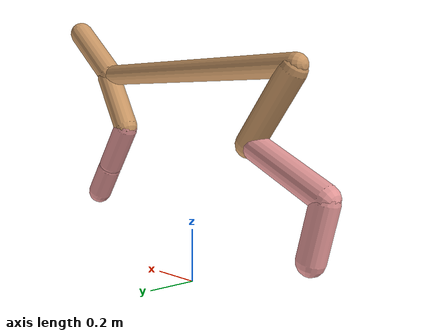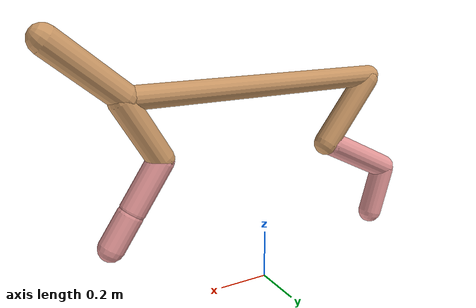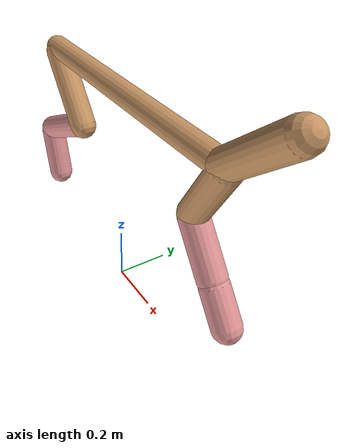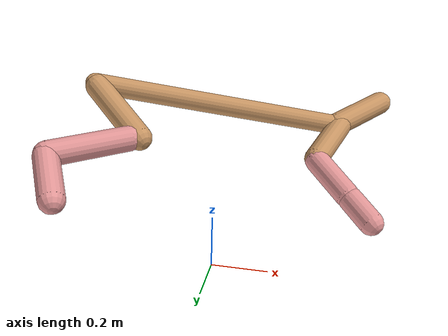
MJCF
<mujoco model="cheetah">
  <compiler angle="radian" coordinate="local" inertiafromgeom="true" settotalmass="14" />
  <default>
    <joint armature=".1" damping=".01" limited="true" solimplimit="0 .8 .03" solreflimit=".02 1" stiffness="8" />
    <geom conaffinity="0" condim="3" contype="1" friction="0.8 .1 .1" rgba="0.8 0.6 .4 1" solimp="0.0 0.8 0.01" solref="0.02 1" />
    <motor ctrllimited="true" ctrlrange="-1 1" />
  </default>
  <size nstack="300000" nuser_geom="1" />
  <option gravity="0 0 -9.81" timestep="0.01" />
  <worldbody>
    <body name="torso" pos="0.0 0.0 0.801079907565007">
      <joint armature="0" axis="1 0 0" damping="0" limited="false" name="ignorex" pos="0 0 0" stiffness="0" type="slide" />
      <joint armature="0" axis="0 0 1" damping="0" limited="false" name="ignorez" pos="0 0 0" stiffness="0" type="slide" />
      <joint armature="0" axis="0 1 0" damping="0" limited="false" name="ignorey" pos="0 0 0" stiffness="0" type="hinge" />
      <geom fromto="-0.5 0.0 0.0 0.5578577284709626 0.0 0.0" name="torso" size="0.04196262457593785" type="capsule" />
      <geom axisangle="0 1 0 .87" name="head" pos="0.6578577284709625 0.0 0.1" size="0.050563799966080986 0.15" type="capsule" />

      <body name="bthigh" pos="-.5 0 0">
        <joint axis="0 1 0" damping="6" name="bthigh" pos="0 0 0" range="-.52 1.05" stiffness="240" type="hinge" />
        <geom axisangle="0 1 0 -3.8" name="bthigh" pos="0.10757311742836541 0.0 -0.13984505265687502" size="0.04994415157898095 0.15742083609908983" type="capsule" />
        <body name="bshin" pos="0.1751462348567308 0.0 -0.26969010531375004">
          <joint axis="0 1 0" damping="4.5" name="bshin" pos="0 0 0" range="-.785 .785" stiffness="180" type="hinge" />
          <geom axisangle="0 1 0 -2.03" name="bshin" pos="-0.15149262090549584 0.0 -0.07574631045274792" rgba="0.9 0.6 0.6 1" size="0.04994415157898095 0.1628491407921619" type="capsule" />
          <body name="bfoot" pos="-0.3029852418109917 0.0 -0.15149262090549584">
            <joint axis="0 1 0" damping="3" name="bfoot" pos="0 0 0" range="-.4 .785" stiffness="120" type="hinge" />
            <geom axisangle="0 1 0 -.27" name="bfoot" pos="0.03237916009697861 0.0 -0.10469261764689751" rgba="0.9 0.6 0.6 1" size="0.04994415157898095 0.10205212822975479" type="capsule" />
            <inertial mass="10" />
          </body>
        </body>
      </body>
      <body name="fthigh" pos="0.5578577284709625 0.0 0.0">
        <joint axis="0 1 0" damping="4.5" name="fthigh" pos="0 0 0" range="-1.5 0.8" stiffness="180" type="hinge" />
        <geom axisangle="0 1 0 .52" name="fthigh" pos="-0.06599519264513425 0.0 -0.11313461596308726" size="0.04961306950140169 0.12505191973342727" type="capsule" />
        <body name="fshin" pos="-0.1319903852902685 0.0 -0.2262692319261745">
          <joint axis="0 1 0" damping="3" name="fshin" pos="0 0 0" range="-1.2 1.1" stiffness="120" type="hinge" />
          <geom axisangle="0 1 0 -.6" name="fshin" pos="0.061291174832848426 0.0 -0.0848647036147132" rgba="0.9 0.6 0.6 1" size="0.04961306950140169 0.09966543978754352" type="capsule" />
          <body name="ffoot" pos="0.12258234966569685 0.0 -0.1697294072294264">
            <joint axis="0 1 0" damping="1.5" name="ffoot" pos="0 0 0" range="-3.1 -0.3" stiffness="60" type="hinge" />
            <geom axisangle="0 1 0 -.6" name="ffoot" pos="0.042737902768148296 0.0 -0.06648118208378626" rgba="0.9 0.6 0.6 1" size="0.04961306950140169 0.06581679985969856" type="capsule" />
            <inertial mass="10" />
          </body>
        </body>
      </body>
    </body>
  </worldbody>
  <actuator>
    <motor gear="120" joint="bthigh" name="bthigh" />
    <motor gear="90" joint="bshin" name="bshin" />
    <motor gear="60" joint="bfoot" name="bfoot" />
    <motor gear="120" joint="fthigh" name="fthigh" />
    <motor gear="60" joint="fshin" name="fshin" />
    <motor gear="30" joint="ffoot" name="ffoot" />
  </actuator>
</mujoco>
